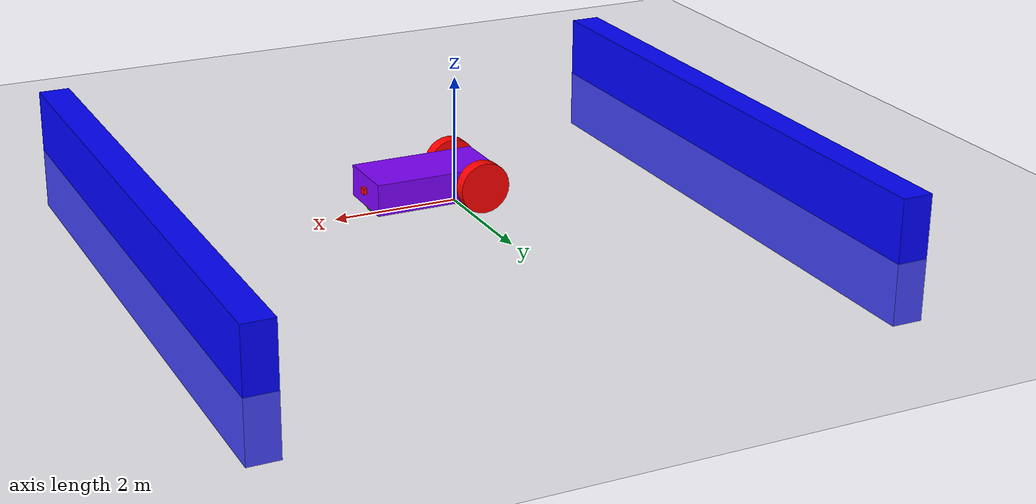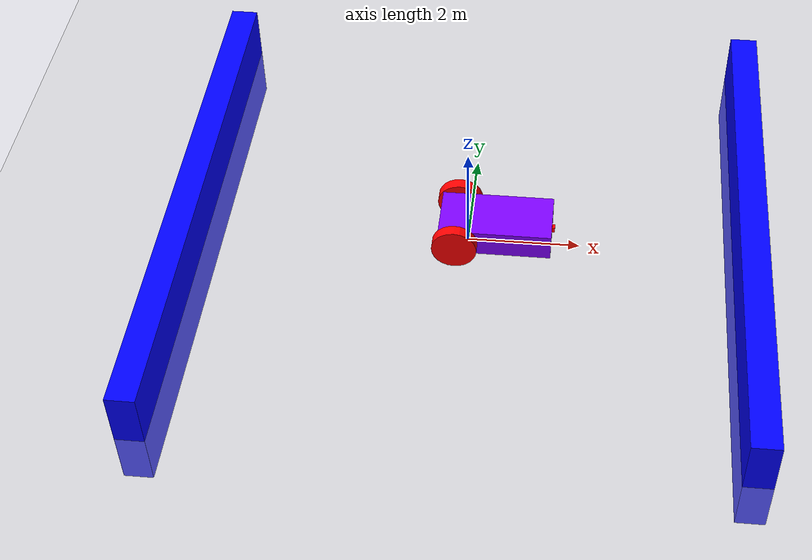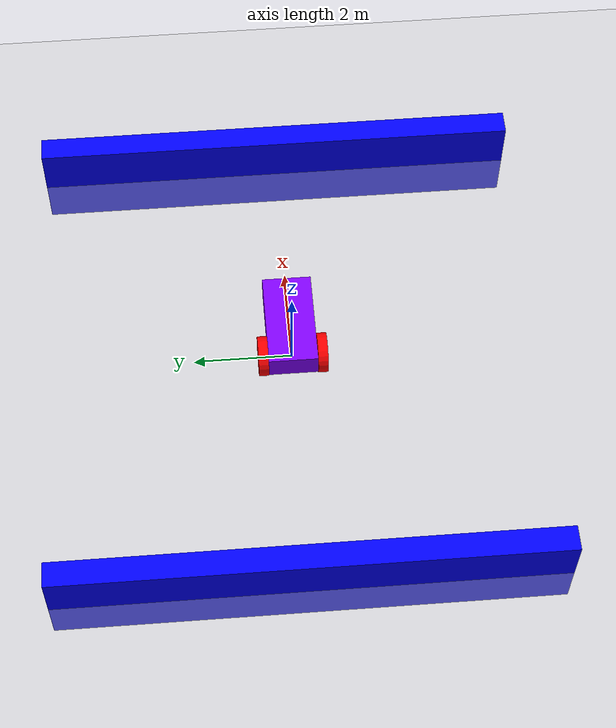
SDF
<?xml version="1.0" ?>
<sdf version="1.8">
    <world name="meu_mundo">
        <!--INICIO DOS PLUGINS DO MUNDO-->
        <plugin
	    filename="libignition-gazebo-sensors-system"
	    name="ignition::gazebo::systems::Sensors">
	    <render_engine>ogre2</render_engine>
        </plugin>

        <plugin
            filename="libignition-gazebo-physics-system"
            name="ignition::gazebo::systems::Physics">
        </plugin>

        <plugin
            filename="libignition-gazebo-scene-broadcaster-system"
            name="ignition::gazebo::systems::SceneBroadcaster">
        </plugin>

        <physics name="1ms" type="ignored">
            <max_step_size>0.001</max_step_size>
            <real_time_factor>1.0</real_time_factor>
        </physics>

        <plugin
            filename="libignition-gazebo-user-commands-system.so"
            name="ignition::gazebo::systems::UserCommands">
        </plugin>

        <plugin filename="libignition-gazebo-triggered-publisher-system.so"
                name="ignition::gazebo::systems::TriggeredPublisher">
	    <input type="ignition.msgs.Boolean" topic="/wall/touched">
	        <match>data: true</match>
	    </input>
	    <output type="ignition.msgs.Twist" topic="/cmd_vel">
	        linear: {x: 0.0}, angular: {z: 0.0}
	    </output>
	</plugin>

	<!-- Moving Forward-->
	<plugin filename="libignition-gazebo-triggered-publisher-system.so"
            name="ignition::gazebo::systems::TriggeredPublisher">
	    <input type="ignition.msgs.Int32" topic="/keyboard/keypress">
	        <match field="data">16777235</match>
	    </input>
	    <output type="ignition.msgs.Twist" topic="/cmd_vel">
	        linear: {x: 0.5}, angular: {z: 0.0}
	    </output>
	</plugin>

	<!-- Moving Backward-->
	<plugin filename="libignition-gazebo-triggered-publisher-system.so"
            name="ignition::gazebo::systems::TriggeredPublisher">
	    <input type="ignition.msgs.Int32" topic="/keyboard/keypress">
	        <match field="data">16777237</match>
	    </input>
	    <output type="ignition.msgs.Twist" topic="/cmd_vel">
	        linear: {x: -0.5}, angular: {z: 0.0}
	    </output>
	</plugin>

	<!-- Moving Left-->
	<plugin filename="libignition-gazebo-triggered-publisher-system.so"
            name="ignition::gazebo::systems::TriggeredPublisher">
	    <input type="ignition.msgs.Int32" topic="/keyboard/keypress">
	        <match field="data">16777234</match>
	    </input>
	    <output type="ignition.msgs.Twist" topic="/cmd_vel">
	        linear: {x: 0.0}, angular: {z: 0.5}
	    </output>
	</plugin>

	<!-- Moving Right-->
	<plugin filename="libignition-gazebo-triggered-publisher-system.so"
            name="ignition::gazebo::systems::TriggeredPublisher">
	    <input type="ignition.msgs.Int32" topic="/keyboard/keypress">
	        <match field="data">16777236</match>
	    </input>
	    <output type="ignition.msgs.Twist" topic="/cmd_vel">
	        linear: {x: 0.0}, angular: {z: -0.5}
	    </output>
	</plugin>

	<!-- Moving Forward-->
	<plugin filename="libignition-gazebo-triggered-publisher-system.so"
            name="ignition::gazebo::systems::TriggeredPublisher">
	    <input type="ignition.msgs.Int32" topic="/keyboard/keypress">
	        <match field="data">87</match>
	    </input>
	    <output type="ignition.msgs.Twist" topic="/cmd_vel">
	        linear: {x: 0.5}, angular: {z: 0.0}
	    </output>
	</plugin>

	<!-- Moving Backward-->
	<plugin filename="libignition-gazebo-triggered-publisher-system.so"
            name="ignition::gazebo::systems::TriggeredPublisher">
	    <input type="ignition.msgs.Int32" topic="/keyboard/keypress">
	        <match field="data">83</match>
	    </input>
	    <output type="ignition.msgs.Twist" topic="/cmd_vel">
	        linear: {x: -0.5}, angular: {z: 0.0}
	    </output>
	</plugin>

	<!-- Moving Left-->
	<plugin filename="libignition-gazebo-triggered-publisher-system.so"
            name="ignition::gazebo::systems::TriggeredPublisher">
	    <input type="ignition.msgs.Int32" topic="/keyboard/keypress">
	        <match field="data">65</match>
	    </input>
	    <output type="ignition.msgs.Twist" topic="/cmd_vel">
	        linear: {x: 0.0}, angular: {z: 0.5}
	    </output>
	</plugin>

	<!-- Moving Right-->
	<plugin filename="libignition-gazebo-triggered-publisher-system.so"
            name="ignition::gazebo::systems::TriggeredPublisher">
	    <input type="ignition.msgs.Int32" topic="/keyboard/keypress">
	        <match field="data">68</match>
	    </input>
	    <output type="ignition.msgs.Twist" topic="/cmd_vel">
	        linear: {x: 0.0}, angular: {z: -0.5}
	    </output>
	</plugin>

        <plugin filename="libignition-gazebo-imu-system"
            name="ignition::gazebo::systems::Imu">
	</plugin>

        <plugin filename="libignition-gazebo-contact-system"
            name="ignition::gazebo::systems::Contact">
	</plugin>

        <!--FIM DOS PLUGINS DO MUNDO-->

        <light type="directional" name="sun">
            <cast_shadows>true</cast_shadows>
            <pose>0 0 10 0 0 0</pose>
            <diffuse>0.8 0.8 0.8 1</diffuse>
            <specular>0.2 0.2 0.2 1</specular>
            <attenuation>
                <range>1000</range>
                <constant>0.9</constant>
                <linear>0.01</linear>
                <quadratic>0.001</quadratic>
            </attenuation>
            <direction>-0.5 0.1 -0.9</direction>
        </light>

        <model name="ground_plane">
            <static>true</static>
            <link name="link">
                <collision name="collision">
                <geometry>
                    <plane>
                    <normal>0 0 1</normal>
                    </plane>
                </geometry>
                </collision>
                <visual name="visual">
                <geometry>
                    <plane>
                    <normal>0 0 1</normal>
                    <size>100 100</size>
                    </plane>
                </geometry>
                <material>
                    <ambient>0.8 0.8 0.8 1</ambient>
                    <diffuse>0.8 0.8 0.8 1</diffuse>
                    <specular>0.8 0.8 0.8 1</specular>
                </material>
                </visual>
            </link>
        </model>

        <model name='wall'>
            <static>true</static>
            <pose>5 0 0 0 0 0</pose><!--pose relative to the world-->
            <plugin filename="libignition-gazebo-touchplugin-system.so"
                name="ignition::gazebo::systems::TouchPlugin">
                <target>meu_carrin</target>
                <namespace>wall</namespace>
                <time>0.001</time>
                <enabled>true</enabled>
                </plugin>
            <link name='box'>
                <pose/>
                <sensor name='sensor_contact' type='contact'>
                    <contact>
                        <collision>collision</collision>
                        </contact>
                </sensor>
                <visual name='visual'>
                    <geometry>
                        <box>
                            <size>0.5 10.0 2.0</size>
                        </box>
                    </geometry>
                    <material>
                        <ambient>0.0 0.0 1.0 1</ambient>
                        <diffuse>0.0 0.0 1.0 1</diffuse>
                        <specular>0.0 0.0 1.0 1</specular>
                    </material>
                </visual>
                <collision name='collision'>
                    <geometry>
                        <box>
                            <size>0.5 10.0 2.0</size>
                        </box>
                    </geometry>
                </collision>
            </link>
	    <plugin filename="libignition-gazebo-touchplugin-system"
	    	    name="ignition::gazebo::systems::TouchPlugin">
	        <target>vehicle_blue</target>
	        <namespace>wall</namespace>
	        <time>0.001</time>
	        <enabled>true</enabled>
	    </plugin>
        </model>

        <model name='wall2'>
	    <static>true</static>
	    <pose>-5 0 0 0 0 0</pose><!--pose relative to the world-->
	    <link name='box'>
	        <sensor name='sensor_contact' type='contact'>
		    <contact>
		        <collision>collision</collision>
		    </contact>
		</sensor>
	        <visual name='visual'>
	            <geometry>
	                <box>
	                    <size>0.5 10.0 2.0</size>
	                </box>
	            </geometry>
                <!--let's add color to our link-->
	            <material>
	                <ambient>0.0 0.0 1.0 1</ambient>
	                <diffuse>0.0 0.0 1.0 1</diffuse>
	                <specular>0.0 0.0 1.0 1</specular>
	            </material>
	        </visual>
	        <collision name='collision'>
	            <geometry>
	                <box>
	                    <size>0.5 10.0 2.0</size>
	                </box>
	            </geometry>
	        </collision>
	    </link>
	    <plugin filename="libignition-gazebo-touchplugin-system"
	    	    name="ignition::gazebo::systems::TouchPlugin">
	        <target>vehicle_blue</target>
	        <namespace>wall2</namespace>
	        <time>0.001</time>
	        <enabled>true</enabled>
	    </plugin>
	</model>

        <!--COMEÇO DO VEÍCULO + CHASSI-->
        <model name='meu_carrin' canonical_link='chassis'>
            <pose relative_to='world'>0 0 0.0 0 0 0</pose>
                <link name='chassis'>
                    <pose relative_to='__model__'>0.5 0 0.4 0 0 0</pose>
                    <inertial> <!--inertial properties of the link mass, inertia matix-->
                        <mass>1.14395</mass>
                        <inertia>
                            <ixx>0.095329</ixx>
                            <ixy>0</ixy>
                            <ixz>0</ixz>
                            <iyy>0.381317</iyy>
                            <iyz>0</iyz>
                            <izz>0.476646</izz>
                        </inertia>
                    </inertial>
                    <visual name='visual'>
                        <geometry>
                            <box>
                                <size>2.0 1.0 0.5</size>
                            </box>
                        </geometry>
                        <!--let's add color to our link-->
                        <material>
                            <ambient>0.0 1.0 0.0 1</ambient>
                            <diffuse>0.5 0.0 1.0 1</diffuse>
                            <specular>1.0 0.0 0.5 1</specular>
                        </material>
                    </visual>
                    <collision name='collision'>
                        <geometry>
                            <box>
                                <size>2.0 1.0 0.5</size>
                            </box>
                        </geometry>
                    </collision>

                    <sensor name="imu_sensor" type="imu">
                        <always_on>1</always_on>
                        <update_rate>1</update_rate>
                        <visualize>true</visualize>
                        <topic>imu</topic>
                    </sensor>

                    <sensor name='gpu_lidar' type='gpu_lidar'>"
			<pose relative_to='lidar_frame'>0 0 0 0 0 0</pose>
		        <topic>lidar</topic>
		        <update_rate>10</update_rate>
		        <ray>
			    <scan>
			        <horizontal>
		                    <samples>640</samples>
		                    <resolution>1</resolution>
		                    <min_angle>-1.396263</min_angle>
		                    <max_angle>1.396263</max_angle>
		                </horizontal>
		                <vertical>
		                    <samples>1</samples>
		                    <resolution>0.01</resolution>
		                    <min_angle>0</min_angle>
		                    <max_angle>0</max_angle>
		                </vertical>
		            </scan>
		            <range>
		                <min>0.08</min>
		                <max>10.0</max>
		                <resolution>0.01</resolution>
		            </range>
		        </ray>
		        <always_on>1</always_on>
		        <visualize>true</visualize>
		    </sensor>

	            <sensor type="camera" name="camera">
	                <pose relative_to="chassis">1 0 0 0 0 0</pose>
	                <topic>camera</topic>
        	        <update_rate>30.0</update_rate>
	                <camera name="head">
	                    <horizontal_fov>1.3962634</horizontal_fov>
	                    <image>
	                        <width>800</width>
	                        <height>800</height>
	                        <format>R8G8B8</format>
	                    </image>
	                    <clip>
	                        <near>0.02</near>
	                        <far>300</far>
	                    </clip>
	                    <noise>
	                        <type>gaussian</type>
	                        <mean>0.0</mean>
	                        <stddev>0.007</stddev>
	                    </noise>
	                </camera>
	            </sensor>

                </link>

                <frame name="caster_frame" attached_to='chassis'>
                    <pose>0.8 0 -0.2 0 0 0</pose>
                </frame>

                <frame name="lidar_frame" attached_to='chassis'>
                    <pose>0.8 0 0.5 0 0 0</pose>
                </frame>

        <!--FIM DO CHASSI-->

        <!--COMEÇO DA CAMERA-->
            <link name="camera">
                <pose relative_to="chassis">1 0 0 0 0 0</pose>
                <visual name='visual'>
                    <geometry>
                        <box>
                            <size>0.1 0.1 0.1</size>
                        </box>
                    </geometry>
                    <material>
                        <ambient>1.0 0.0 0.0 1</ambient>
                        <diffuse>1.0 0.0 0.0 1</diffuse>
                        <specular>1.0 0.0 0.0 1</specular>
                    </material>
                </visual>
                <collision name='collision'>
                    <geometry>
                        <box>
                            <size>0.1 0.1 0.1</size>
                        </box>
                    </geometry>
                </collision>
                <inertial>
                    <mass>0.1</mass>
                    <inertia>
                        <ixx>0.043333</ixx>
                        <ixy>0</ixy>
                        <ixz>0</ixz>
                        <iyy>0.043333</iyy>
                        <iyz>0</iyz>
                        <izz>0.08</izz>
                    </inertia>
                </inertial>
            </link>

            <joint name='camera_joint' type="fixed">
                <origin xyz="1 0 0" rpy="0 0 0"/>
                <parent>chassis</parent>
                <child>camera</child>
            </joint>

        <!--FIM DA CAMERA-->

        <!--COMEÇO DAS RODAS-->
            <link name='roda_esquerda'>
                <pose relative_to="chassis">-0.7 0.6 0 -1.5707 0 0</pose>
                <inertial>
                    <mass>1</mass>
                    <inertia>
                        <ixx>0.043333</ixx>
                        <ixy>0</ixy>
                        <ixz>0</ixz>
                        <iyy>0.043333</iyy>
                        <iyz>0</iyz>
                        <izz>0.08</izz>
                    </inertia>
                </inertial>
                <visual name='visual'>
                    <geometry>
                        <cylinder>
                            <radius>0.4</radius>
                            <length>0.2</length>
                        </cylinder>
                    </geometry>
                    <material>
                        <ambient>1.0 0.0 0.0 1</ambient>
                        <diffuse>1.0 0.0 0.0 1</diffuse>
                        <specular>1.0 0.0 0.0 1</specular>
                    </material>
                </visual>
                <collision name='collision'>
                    <geometry>
                        <cylinder>
                            <radius>0.4</radius>
                            <length>0.2</length>
                        </cylinder>
                    </geometry>
                </collision>
            </link>

            <link name='roda_direita'>
                <pose relative_to="chassis">-0.7 -0.6 0 -1.5707 0 0</pose>
                <inertial>
                    <mass>1</mass>
                    <inertia>
                        <ixx>0.043333</ixx>
                        <ixy>0</ixy>
                        <ixz>0</ixz>
                        <iyy>0.043333</iyy>
                        <iyz>0</iyz>
                        <izz>0.08</izz>
                    </inertia>
                </inertial>
                <visual name='visual'>
                    <geometry>
                        <cylinder>
                            <radius>0.4</radius>
                            <length>0.2</length>
                        </cylinder>
                    </geometry>
                    <material>
                        <ambient>1.0 0.0 0.0 1</ambient>
                        <diffuse>1.0 0.0 0.0 1</diffuse>
                        <specular>1.0 0.0 0.0 1</specular>
                    </material>
                </visual>
                <collision name='collision'>
                    <geometry>
                        <cylinder>
                            <radius>0.4</radius>
                            <length>0.2</length>
                        </cylinder>
                    </geometry>
                </collision>
            </link>

            <link name='caster'>
                <pose relative_to='caster_frame'/>
                <inertial>
                    <mass>1</mass>
                    <inertia>
                        <ixx>0.016</ixx>
                        <ixy>0</ixy>
                        <ixz>0</ixz>
                        <iyy>0.016</iyy>
                        <iyz>0</iyz>
                        <izz>0.016</izz>
                    </inertia>
                </inertial>
                <visual name='visual'>
                    <geometry>
                        <sphere>
                            <radius>0.2</radius>
                        </sphere>
                    </geometry>
                    <material>
                        <ambient>0.0 1 0.0 1</ambient>
                        <diffuse>0.0 1 0.0 1</diffuse>
                        <specular>0.0 1 0.0 1</specular>
                    </material>
                </visual>
                <collision name='collision'>
                    <geometry>
                        <sphere>
                            <radius>0.2</radius>
                        </sphere>
                    </geometry>
                </collision>
            </link>

        <!--FIM DAS RODAS-->

        <!--COMEÇO DAS JUNTAS-->
            <joint name='junta_roda_esquerda' type='revolute'>
                <pose relative_to='roda_esquerda'/>
                <parent>chassis</parent>
                <child>roda_esquerda</child>
                <axis>
                    <xyz expressed_in='__model__'>0 1 0</xyz>
                    <limit>
                        <lower>-1.79769e+308</lower>
                        <upper>1.79769e+308</upper>
                    </limit>
                </axis>
            </joint>

            <joint name='junta_roda_direita' type='revolute'>
                <pose relative_to='roda_direita'/>
                <parent>chassis</parent>
                <child>roda_direita</child>
                <axis>
                    <xyz expressed_in='__model__'>0 1 0</xyz>
                    <limit>
                        <lower>-1.79769e+308</lower>
                        <upper>1.79769e+308</upper>
                    </limit>
                </axis>
            </joint>

            <joint name='caster_wheel' type='ball'>
                <parent>chassis</parent>
                <child>caster</child>
            </joint>
        <!--FIM DAS JUNTAS-->

        <!--INICIO DOS PLUGINS DO MODELO-->
            <plugin
                filename="libignition-gazebo-diff-drive-system.so"
                name="ignition::gazebo::systems::DiffDrive">
                <left_joint>junta_roda_esquerda</left_joint>
                <right_joint>junta_roda_direita</right_joint>
                <wheel_separation>1.2</wheel_separation>
                <wheel_radius>0.4</wheel_radius>
                <odom_publish_frequency>1</odom_publish_frequency>
                <topic>cmd_vel</topic>
            </plugin>

            <plugin filename="libignition-gazebo-triggered-publisher-system.so"
                name="ignition::gazebo::systems::TriggeredPublisher">
                <input type="ignition.msgs.Boolean" topic="/wall/touched">
                    <match>data: true</match>
                </input>
                <output type="ignition.msgs.Twist" topic="/cmd_vel">
                    linear: {x: 0.0}, angular: {z: 0.0}
                </output>
            </plugin>
        <!--FIM DOS PLUGINS DO MODELO-->
        </model>
    </world>
</sdf>
